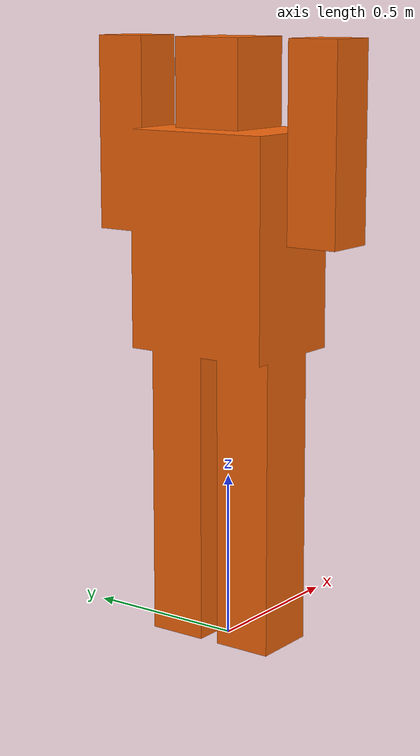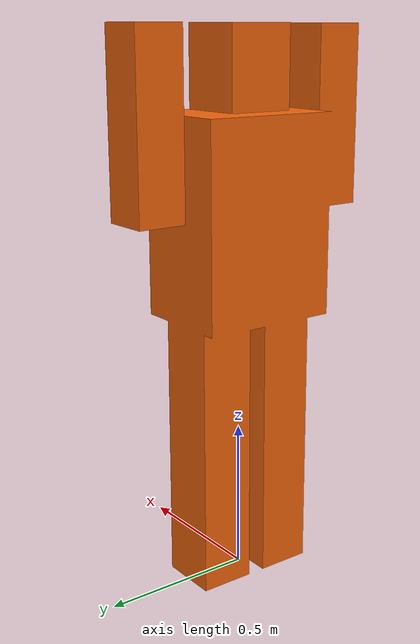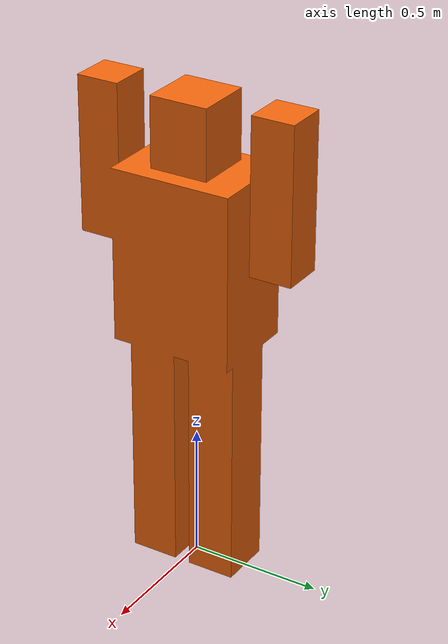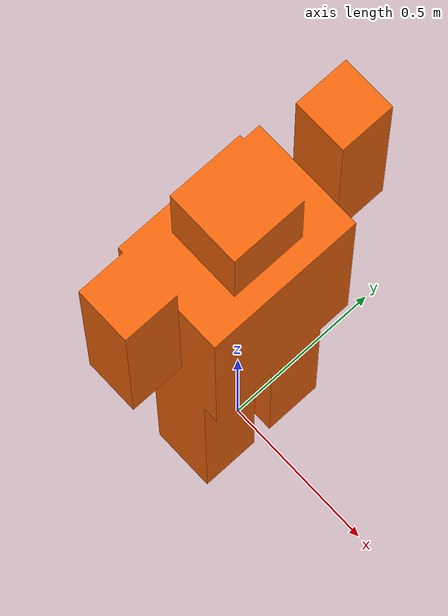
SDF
<?xml version="1.0" encoding="UTF-8"?>
<sdf version="1.9">
  <model name="human_standing_waving">
    <static>true</static>
    <link name="body_link">
      <!-- 3D Volumetric Humanoid Mesh with Photorealistic Texture -->
      <visual name="survivor_mesh">
        <pose>0 0 0 0 0 0</pose>
        <geometry>
          <mesh>
            <uri>model://human_standing_waving/meshes/standing_waving.obj</uri>
            <scale>1 1 1</scale>
          </mesh>
        </geometry>
        <material>
          <ambient>0.95 0.40 0.05 1.0</ambient>
          <diffuse>0.95 0.40 0.05 1.0</diffuse>
          <specular>0.1 0.1 0.1 1.0</specular>
        </material>
      </visual>

      <!-- Physical 3D Capsule Collision -->
      <collision name="col">
        <pose>0 0 0.9 0 0 0</pose>
        <geometry><capsule><radius>0.26</radius><length>1.4</length></capsule></geometry>
      </collision>
    </link>
  </model>
</sdf>
